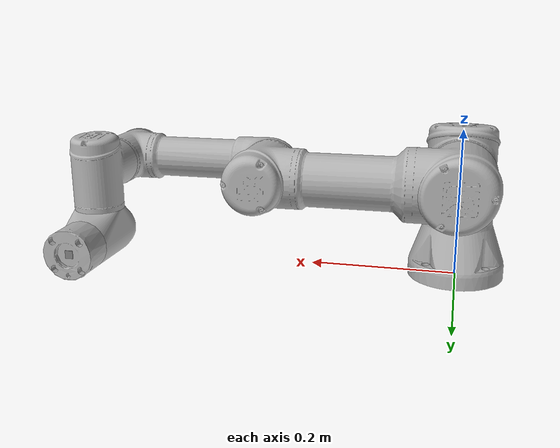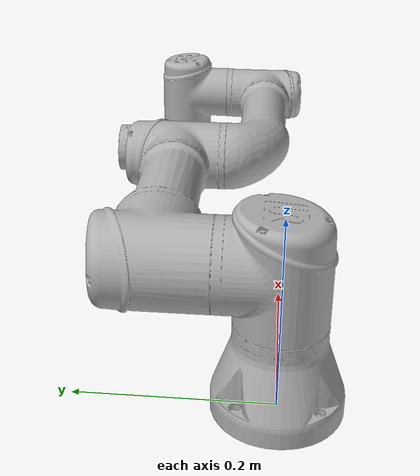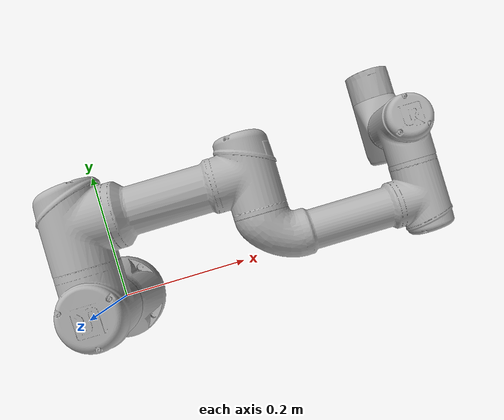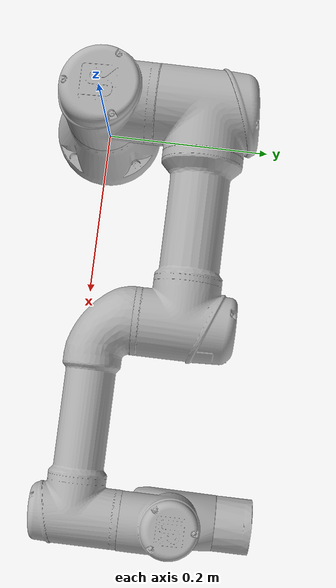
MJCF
<mujoco model="ur3e">
    <compiler angle="radian" meshdir="./mesh/ur3e/collision/" texturedir="./mesh/ur3e/visual/" />
    <asset>
        <mesh name="base"     file="base.stl" />
        <mesh name="shoulder" file="shoulder.stl" />
        <mesh name="upperarm" file="upperarm.stl" />
        <mesh name="forearm"  file="forearm.stl" />
        <mesh name="wrist1"   file="wrist1.stl" />
        <mesh name="wrist2"   file="wrist2.stl" />
        <mesh name="wrist3"   file="wrist3.stl" />
    </asset>
    <worldbody>
    <body name="base" pos="0 0 0">
        <geom type="mesh" contype="0" conaffinity="0" group="1" rgba="0.7 0.7 0.7 1" mesh="base" />
        <geom type="mesh" rgba="0.7 0.7 0.7 1" mesh="base" />
        <body name="shoulder_link" pos="0 0 0.152">
            <inertial pos="0 0 0" mass="2" diaginertia="0.00809316 0.00809316 0.005625" />
            <joint name="shoulder_pan_joint" pos="0 0 0" axis="0 0 1" limited="true" range="-3.14159 3.14159" />
            <geom type="mesh" contype="0" conaffinity="0" group="1" rgba="0.7 0.7 0.7 1" mesh="shoulder" />
            <geom type="mesh" rgba="0.7 0.7 0.7 1" mesh="shoulder" />
            <body name="upper_arm_link" pos="0 0.12 0" quat="0.707107 0 0.707107 0">
                <inertial pos="0 0 0.122" mass="3.42" diaginertia="0.0217771 0.0217771 0.00961875" />
                <joint name="shoulder_lift_joint" pos="0 0 0" axis="0 1 0" limited="true" range="-3.14159 3.14159" />
                <geom type="mesh" contype="0" conaffinity="0" group="1" rgba="0.7 0.7 0.7 1" mesh="upperarm" />
                <geom type="mesh" rgba="0.7 0.7 0.7 1" mesh="upperarm" />
                <body name="forearm_link" pos="0 -0.093 0.244">
                    <inertial pos="0 0 0.1065" mass="1.26" diaginertia="0.00653562 0.00653562 0.00354375" />
                    <joint name="elbow_joint" pos="0 0 0" axis="0 1 0" limited="true" range="-3.14159 3.14159" />
                    <geom type="mesh" contype="0" conaffinity="0" group="1" rgba="0.7 0.7 0.7 1" mesh="forearm" />
                    <geom type="mesh" rgba="0.7 0.7 0.7 1" mesh="forearm" />
                    <body name="wrist_1_link" pos="0 0 0.213" quat="0.707107 0 0.707107 0">
                        <inertial pos="0 0 0" quat="0.5 0.5 -0.5 0.5" mass="0.8" diaginertia="0.00225 0.002085 0.002085" />
                        <joint name="wrist_1_joint" pos="0 0 0" axis="0 1 0" limited="true" range="-3.14159 3.14159" />
                        <geom type="mesh" contype="0" conaffinity="0" group="1" rgba="0.7 0.7 0.7 1" mesh="wrist1" />
                        <geom type="mesh" rgba="0.7 0.7 0.7 1" mesh="wrist1" />
                        <body name="wrist_2_link" pos="0 0.104 0">
                            <inertial pos="0 0 0" quat="0.5 0.5 -0.5 0.5" mass="0.8" diaginertia="0.00225 0.002085 0.002085" />
                            <joint name="wrist_2_joint" pos="0 0 0" axis="0 0 1" limited="true" range="-3.14159 3.14159" />
                            <geom type="mesh" contype="0" conaffinity="0" group="1" rgba="0.7 0.7 0.7 1" mesh="wrist2" />
                            <geom type="mesh" rgba="0.7 0.7 0.7 1" mesh="wrist2" />
                            <body name="wrist_3_link" pos="0 0 0.085">
                                <inertial pos="0 0.000233618 0" quat="0.5 0.5 -0.5 0.5" mass="0.351" diaginertia="0.000991097 0.000918909 0.000912204" />
                                <joint name="wrist_3_joint" pos="0 0 0" axis="0 1 0" limited="true" range="-3.14159 3.14159" />
                                <geom type="mesh" contype="0" conaffinity="0" group="1" rgba="0.7 0.7 0.7 1" mesh="wrist3" />
                                <geom type="mesh" rgba="0.7 0.7 0.7 1" mesh="wrist3" />
                                <geom size="0.005 0.005 0.005" pos="0 0.082 0" quat="0.707107 0 0 0.707107" type="box" />
                            </body>
                        </body>
                    </body>
                </body>
            </body>
        </body>
      </body>
    </worldbody>
    <!-- Actuators -->
    <actuator>
      <motor name="shoulder_pan_motor"  joint="shoulder_pan_joint"  ctrllimited="true" ctrlrange="-330 330" />
      <motor name="shoulder_lift_motor" joint="shoulder_lift_joint" ctrllimited="true" ctrlrange="-330 330" />
      <motor name="elbow_motor"         joint="elbow_joint"         ctrllimited="true" ctrlrange="-150 150" />
      <motor name="wrist_1_motor"       joint="wrist_1_joint"       ctrllimited="true" ctrlrange="-54 54" />
      <motor name="wrist_2_motor"       joint="wrist_2_joint"       ctrllimited="true" ctrlrange="-54 54" />
      <motor name="wrist_3_motor"       joint="wrist_3_joint"       ctrllimited="true" ctrlrange="-54 54" />
    </actuator>
</mujoco>
